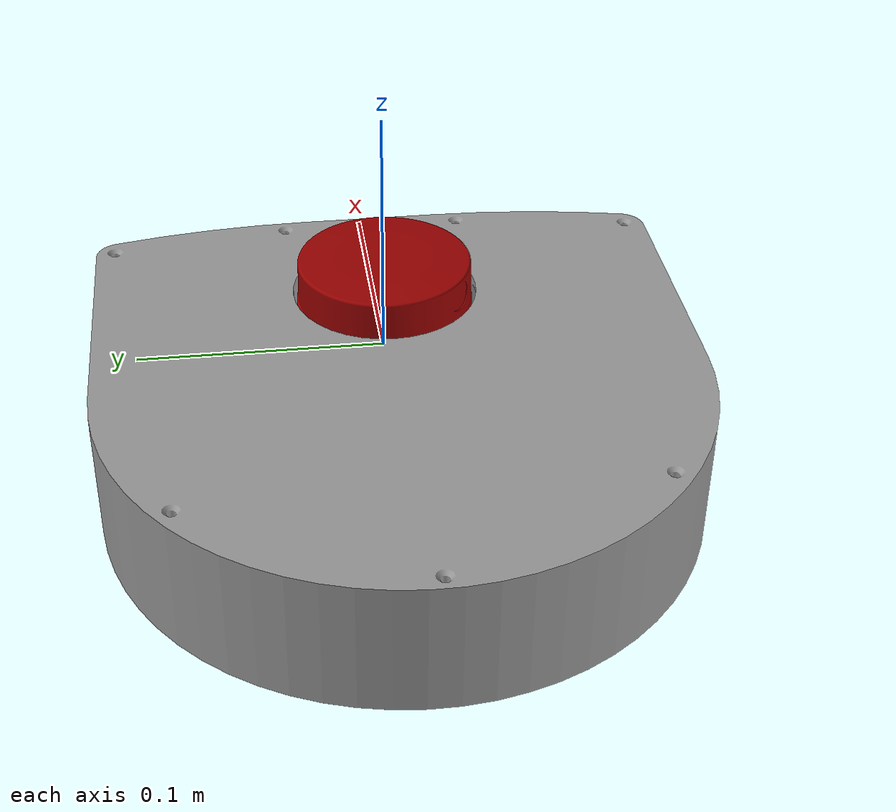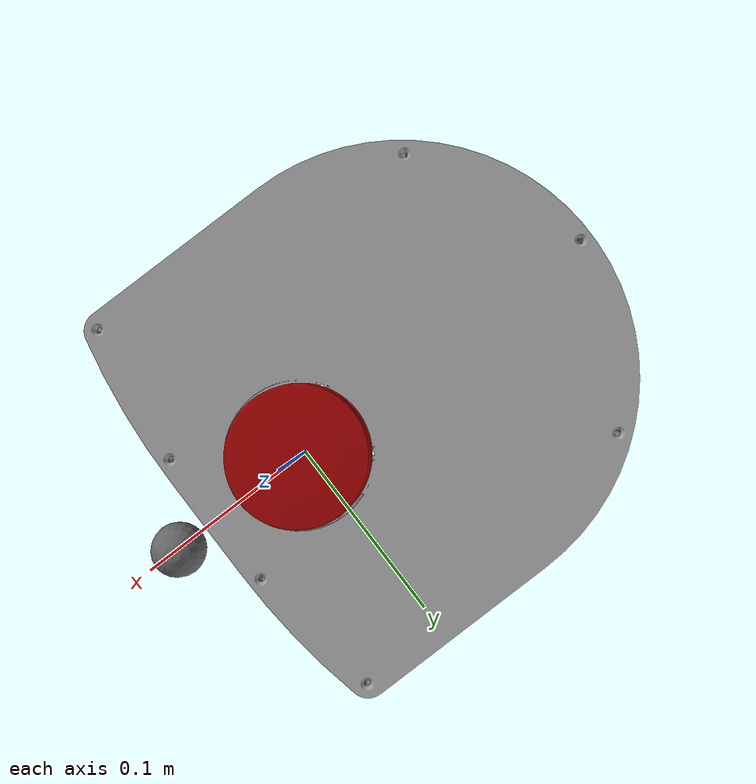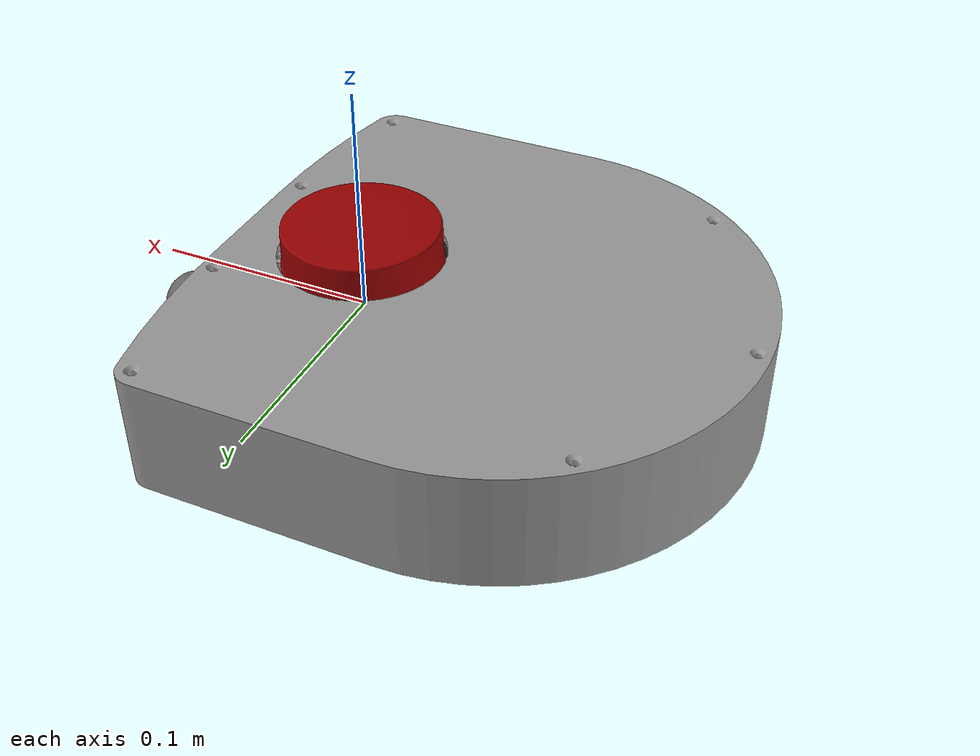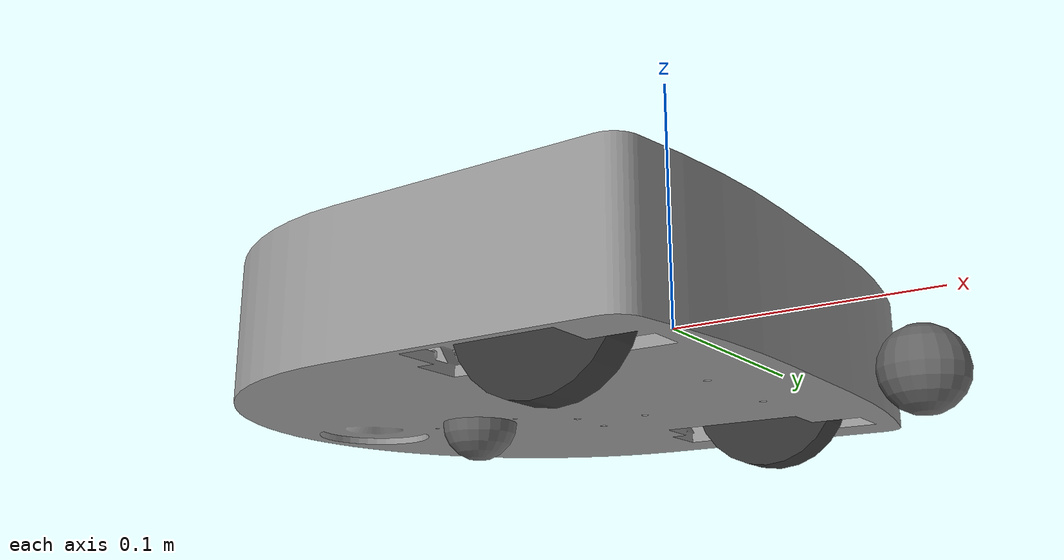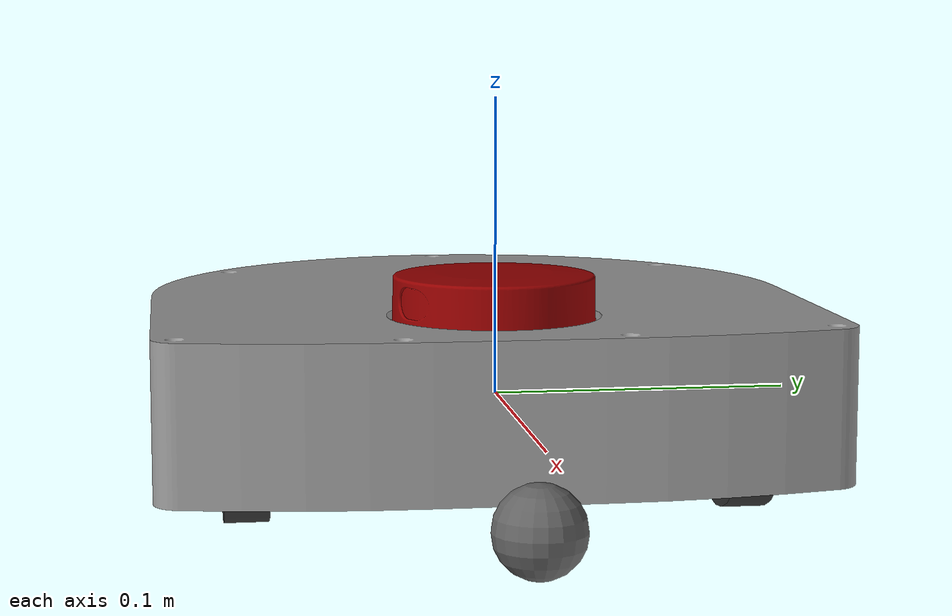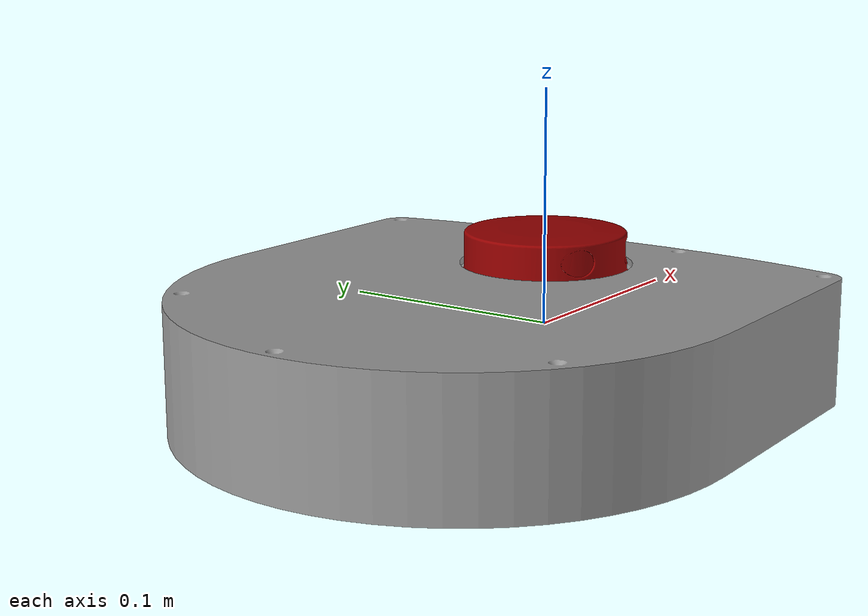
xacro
<?xml version="1.0"?>
<robot xmlns:xacro="http://www.ros.org/wiki/xacro" name="myrobot">

  <xacro:macro name="box_inertia" params="b_mass b_length b_width b_height">
    <inertial>
      <mass value="${b_mass}"/>
      <inertia ixx="${b_mass*(b_length*b_length+b_height*b_height)/12}" ixy="0.0" ixz="0.0"
               iyy="${b_mass*(b_width*b_width+b_height*b_height)/12}" iyz="0.0"
               izz="${b_mass*(b_length*b_length+b_width*b_width)/12}"/>
    </inertial>
  </xacro:macro>

  <xacro:macro name="cylinder_inertia" params="c_mass c_radius c_height">
    <inertial>
      <origin xyz="0 0 0" />
      <mass value="${c_mass}"/>
      <inertia ixx="${c_mass*(3*c_radius*c_radius+c_height*c_height)/12}" ixy="0.0" ixz="0.0"
               izz="${c_mass*(3*c_radius*c_radius+c_height*c_height)/12}" iyz="0.0"
               iyy="${c_mass*c_radius*c_radius/2}"/>
    </inertial>
  </xacro:macro>

  <xacro:property name="base_link_mass" value="3.0" /><!-- please correct this -->
  <xacro:property name="base_link_length" value="0.22" />
  <xacro:property name="base_link_width" value="0.22" />
  <xacro:property name="base_link_height" value="0.053" />
  <xacro:property name="wheel_mass" value="0.2" /><!-- please correct this -->
  <xacro:property name="wheel_radius" value="0.0315" /><!-- please correct this -->
  <xacro:property name="wheel_height" value="0.015" /><!-- please correct this -->
  <xacro:property name="track" value="0.17" />
  <xacro:property name="clearance" value="0.015" />

  <!-- base_link is the root of the tree: the wheel odometry publishes
       odom -> base_link directly, so no extra "root_link" frame is needed. -->

  <link name="lidar_link">
    <visual>
      <origin rpy="${pi} 0 0" xyz="0 0 0"/>
      <geometry>
        <mesh filename="package://myrobot_description/meshes/lds01rr.STL" scale="0.001 0.001 0.001"/>
      </geometry>
      <material name="red">
        <color rgba="0.6 0.0 0.0 1"/>
      </material>
    </visual>
  </link>

  <gazebo reference="lidar_link">
    <sensor type="ray" name="lidar_sensor">
      <pose>0 0 0 0 0 0</pose>
      <visualize>true</visualize>
      <update_rate>10</update_rate>
      <ray>
        <scan>
          <horizontal>
            <samples>360</samples>
            <resolution>1</resolution>
            <min_angle>-3.14159</min_angle>
            <max_angle>3.14159</max_angle>
          </horizontal>
        </scan>
        <range>
          <min>0.12</min>
          <max>10.0</max>
          <resolution>0.015</resolution>
        </range>
      </ray>
      <plugin name="gazebo_ros_ray_sensor" filename="libgazebo_ros_ray_sensor.so">
        <ros>
          <remapping>~/out:=scan</remapping>
        </ros>
        <output_type>sensor_msgs/LaserScan</output_type>
        <frame_name>lidar_link</frame_name>
      </plugin>
    </sensor>
  </gazebo>

  <joint name="base_to_lidar" type="fixed">
    <parent link="base_link"/>
    <child link="lidar_link"/>
    <origin xyz="0 0 ${base_link_height/2 + 0.005}" rpy="${pi} 0 ${pi/4}"/>
  </joint>

  <link name="imu_link"></link>

  <joint name="imu_joint" type="fixed">
    <parent link="base_link"/>
    <child link="imu_link"/>
    <origin xyz="-0.038 0.024 ${-base_link_height/2 + 0.008}" rpy="0 0 ${-pi}"/>
  </joint>

  <gazebo reference="imu_link">
    <sensor type="imu" name="imu_sensor">
      <always_on>true</always_on>
      <update_rate>100</update_rate>
      <plugin name="gazebo_ros_imu_sensor" filename="libgazebo_ros_imu_sensor.so">
        <ros>
          <!-- Same topic as ros2_mpu9250_driver, so slam.yaml is unchanged. -->
          <remapping>~/out:=imu/data_raw</remapping>
        </ros>
      </plugin>
    </sensor>
  </gazebo>

  <xacro:macro name="base_link_geometry">
    <geometry>
      <box size="${base_link_length} ${base_link_width} ${base_link_height}"/>
    </geometry>
    <origin xyz="0 0 0" rpy="0 0 0" />
  </xacro:macro>

  <link name="base_link">
    <visual>
      <origin rpy="0 0 0" xyz="0 0 0"/>
      <geometry>
        <mesh filename="package://myrobot_description/meshes/base.stl" scale="0.001 0.001 0.001"/>
      </geometry>
      <material name="grey">
        <color rgba="0.6 0.6 0.6 1"/>
      </material>
    </visual>
    <collision>
      <xacro:base_link_geometry />
    </collision>
    <xacro:box_inertia
     b_mass="${base_link_mass}"
     b_length="${base_link_length}"
     b_width="${base_link_width}"
     b_height="${base_link_height}"/>
  </link>
  <gazebo reference="base_link">
    <material>Gazebo/RustySteel</material>
  </gazebo>

  <xacro:macro name="wheel_joint" params="w_name origin_x origin_y origin_z geometry_yaw">
    <link name="${w_name}_wheel">
      <visual>
        <geometry>
          <cylinder length="${wheel_height}" radius="${wheel_radius}"/>
        </geometry>
        <origin xyz="0 0 0" rpy="${pi/2} 0 ${geometry_yaw}"/>
        <material name="black">
          <color rgba="0.2 0.2 0.2 1"/>
        </material>
      </visual>
      <collision>
        <geometry>
          <cylinder length="${wheel_height}" radius="${wheel_radius}"/>
        </geometry>
        <origin xyz="0 0 0" rpy="${pi/2} 0 0"/>
      </collision>
      <xacro:cylinder_inertia
        c_mass="${wheel_mass}"
        c_radius="${wheel_radius}"
        c_height="${wheel_height}"/>
    </link>

    <joint name="base_to_${w_name}_wheel" type="continuous">
      <parent link="base_link"/>
      <child link="${w_name}_wheel"/>
      <axis xyz="0 1 0"/>
      <origin xyz="${origin_x} ${origin_y} ${origin_z}" rpy="0 0 0"/>

    </joint>

    <gazebo reference="${w_name}_wheel">
      <!-- fdir1 must be a unit vector along the rolling direction; "0 0 0" made
           ODE use isotropic friction and the base yawed at zero command. -->
      <mu1 value="0.5"/>
      <mu2 value="1.0"/>
      <fdir1 value="1 0 0"/>

      <maxContacts value="1"/>
      <turnGravityOff>false</turnGravityOff>
      <material>Gazebo/DarkGrey</material>
    </gazebo>

    <transmission name="${w_name}_trans" type="SimpleTransmission">
      <type>transmission_interface/SimpleTransmission</type>
      <joint name="base_to_${w_name}_wheel">
        <hardwareInterface>hardware_interface/VelocityJointInterface</hardwareInterface>
      </joint>
      <actuator name="base_to_${w_name}_motor">
        <mechanicalReduction>1</mechanicalReduction>
      </actuator>
    </transmission>
  </xacro:macro>

  <xacro:property name="caster_radius" value="0.015" />
  <xacro:macro name="caster" params="c_name origin_x">
    <link name="${c_name}_caster">
      <visual>
        <geometry><sphere radius="${caster_radius}"/></geometry>
        <material name="grey"><color rgba="0.4 0.4 0.4 1"/></material>
      </visual>
      <collision>
        <geometry><sphere radius="${caster_radius}"/></geometry>
      </collision>
      <inertial>
        <mass value="0.02"/>
        <inertia ixx="1e-6" ixy="0" ixz="0" iyy="1e-6" iyz="0" izz="1e-6"/>
      </inertial>
    </link>
    <joint name="base_to_${c_name}_caster" type="fixed">
      <parent link="base_link"/>
      <child link="${c_name}_caster"/>
      <origin xyz="${origin_x} 0 ${-base_link_height/2 - clearance + caster_radius}"
              rpy="0 0 0"/>
    </joint>
    <gazebo reference="${c_name}_caster">
      <!-- Small but non-zero: a frictionless sphere lets the base slide and yaw. -->
      <mu1 value="0.01"/>
      <mu2 value="0.01"/>
      <kp value="1000000.0"/>
    </gazebo>
  </xacro:macro>

  <xacro:caster c_name="front" origin_x="0.09"/>
  <xacro:caster c_name="rear" origin_x="-0.09"/>

  <xacro:wheel_joint
    w_name="l"
    origin_y="${track/2}"
    origin_x="0"
    origin_z="${wheel_radius-base_link_height/2-clearance}"
    geometry_yaw="0"/>

  <xacro:wheel_joint
    w_name="r"
    origin_y="${-track/2}"
    origin_x="0"
    origin_z="${wheel_radius-base_link_height/2-clearance}"
    geometry_yaw="0"/>

  <gazebo>
    <plugin name="gazebo_ros_diff_drive" filename="libgazebo_ros_diff_drive.so">
      <ros>
        <namespace>/</namespace>
        <remapping>cmd_vel:=cmd_vel</remapping>
        <remapping>odom:=odom</remapping>
      </ros>
      <update_rate>30</update_rate>
      <left_joint>base_to_l_wheel</left_joint>
      <right_joint>base_to_r_wheel</right_joint>
      <wheel_separation>${track}</wheel_separation>
      <wheel_diameter>${wheel_radius*2}</wheel_diameter>
      <max_wheel_torque>20</max_wheel_torque>
      <max_wheel_acceleration>1.0</max_wheel_acceleration>
      <publish_odom>true</publish_odom>
      <publish_odom_tf>true</publish_odom_tf>
      <!-- robot_state_publisher already broadcasts the wheel joints. -->
      <publish_wheel_tf>false</publish_wheel_tf>
      <odometry_frame>odom</odometry_frame>
      <robot_base_frame>base_link</robot_base_frame>
    </plugin>
  </gazebo>

</robot>
